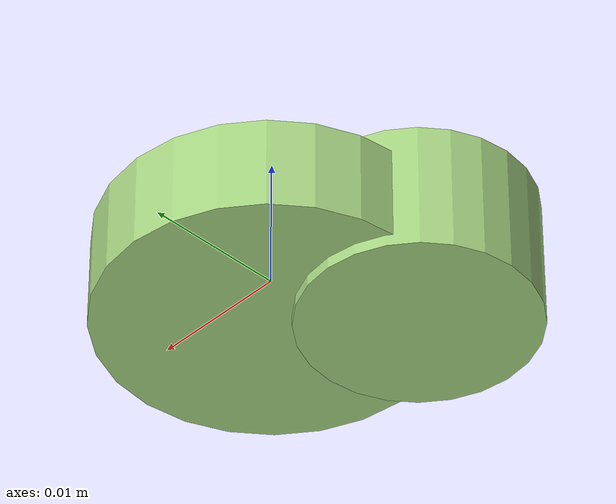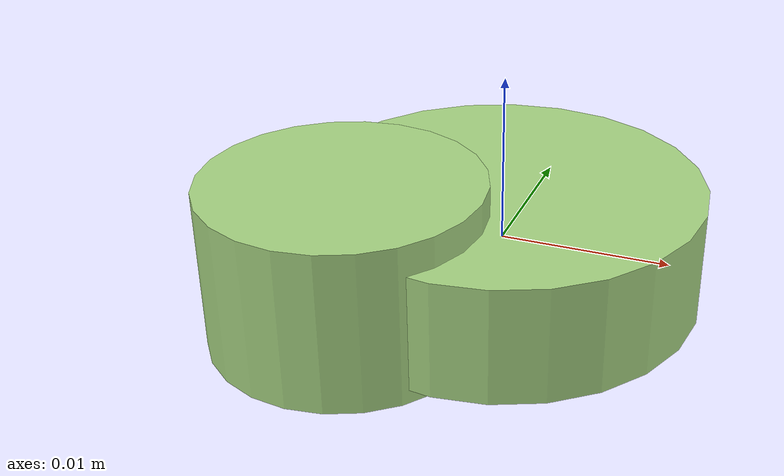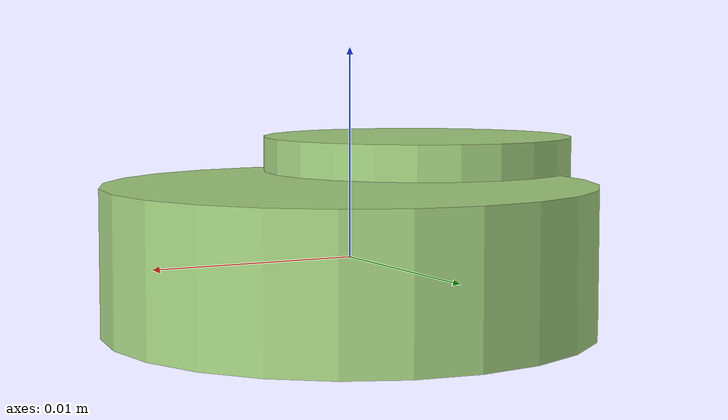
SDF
<?xml version="1.0" ?>
<!-- |    This document was autogenerated by xmacro from data/veggie_template/veggie_base.sdf.xacro  | -->
<!-- |    EDITING THIS FILE BY HAND IS NOT RECOMMENDED                                               | -->
<sdf version="1.8">
	<!-- Parameters -->
	<!-- Base -->
	<!-- Joint 0 -->
	<!-- Link 1 -->
	<!-- Joint 1 -->
	<!-- Link 2 -->
	<!-- Primitives -->
	<!-- All dimensions are half -->
	<!-- Object -->
	<model name="veggie">
		<!-- link0 -->
		<link name="link0">
			<inertial>
				<mass>0.003109842318104298</mass>
				<inertia>
					<ixx>1.2248813309453175e-07</ixx>
					<ixy>0</ixy>
					<ixz>0</ixz>
					<iyy>1.2248813309453175e-07</iyy>
					<iyz>0</iyz>
					<izz>2.194867026731193e-07</izz>
				</inertia>
			</inertial>
			<visual name="link0_visual">
				<pose>0 0 0 0 0 0</pose>
				<geometry>
					<cylinder>
						<radius>0.011880915864279536</radius>
						<length>0.007012738424506407</length>
					</cylinder>
				</geometry>
				<material>
					<ambient>0.659 0.839 0.514 1</ambient>
					<diffuse>0.659 0.839 0.514 1</diffuse>
					<specular>0 0 0 0</specular>
					<emissive>0 0 0 1</emissive>
				</material>
			</visual>
			<collision name="link0_collision">
				<pose>0 0 0 0 0 0 </pose>
				<geometry>
					<cylinder>
						<radius>0.011880915864279536</radius>
						<length>0.007012738424506407</length>
					</cylinder>
				</geometry>
			</collision>
		</link>
		<!-- link1 -->
		<joint name="joint0" type="fixed">
			<pose relative_to="link0">-0.007337193091013264 -0.006244340639634795 0.0004910499129589704 0.0 0.0 0.0</pose>
			<parent>link0</parent>
			<child>link1</child>
		</joint>
		<link name="link1">
			<pose relative_to="joint0">0 0 0 0 0 0</pose>
			<inertial>
				<mass>0.0020473261023920336</mass>
				<inertia>
					<ixx>5.044775641789177e-08</ixx>
					<ixy>0</ixy>
					<ixz>0</ixz>
					<iyy>5.044775641789177e-08</iyy>
					<iyz>0</iyz>
					<izz>6.900550854636077e-08</izz>
				</inertia>
			</inertial>
			<visual name="link1_visual">
				<pose>0 0 0 0 0 0</pose>
				<geometry>
					<cylinder>
						<radius>0.008210382051328251</radius>
						<length>0.009667393630516783</length>
					</cylinder>
				</geometry>
				<material>
					<ambient>0.659 0.839 0.514 1</ambient>
					<diffuse>0.659 0.839 0.514 1</diffuse>
					<specular>0 0 0 0</specular>
					<emissive>0 0 0 1</emissive>
				</material>
			</visual>
			<collision name="link1_collision">
				<pose>0 0 0 0 0 0 </pose>
				<geometry>
					<cylinder>
						<radius>0.008210382051328251</radius>
						<length>0.009667393630516783</length>
					</cylinder>
				</geometry>
			</collision>
		</link>
		<!-- link2 -->
	</model>
</sdf>
